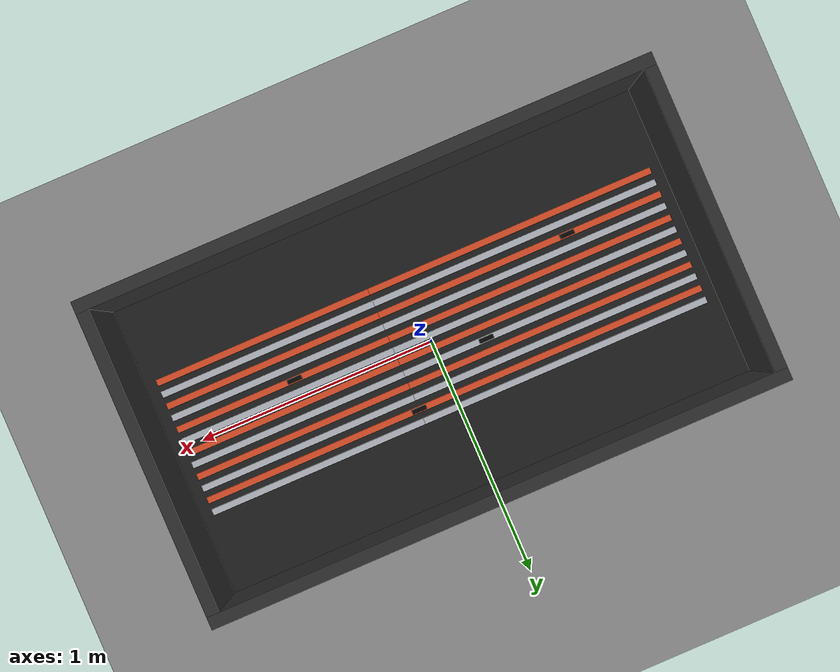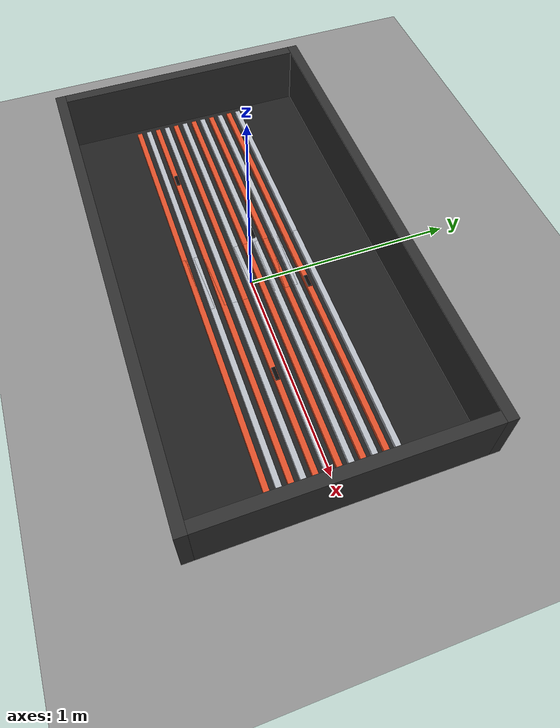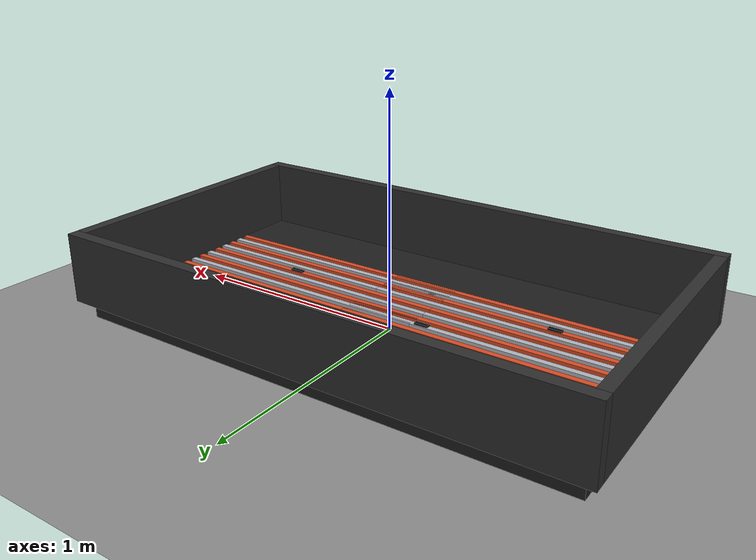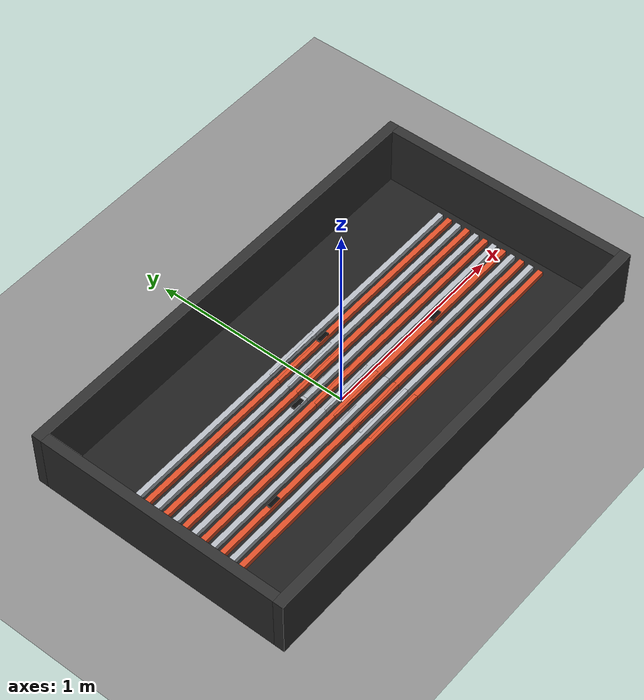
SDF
<?xml version="1.0"?>
<sdf version="1.9">
  <world name="electrode_test_world">

    <physics name="default_physics" type="ode">
      <max_step_size>0.001</max_step_size>
      <real_time_factor>1.0</real_time_factor>
    </physics>

    <plugin filename="gz-sim-physics-system" name="gz::sim::systems::Physics"/>
    <plugin filename="gz-sim-user-commands-system" name="gz::sim::systems::UserCommands"/>
    <plugin filename="gz-sim-scene-broadcaster-system" name="gz::sim::systems::SceneBroadcaster"/>
    <plugin filename="gz-sim-sensors-system" name="gz::sim::systems::Sensors">
      <render_engine>ogre2</render_engine>
    </plugin>
    <plugin filename="gz-sim-imu-system" name="gz::sim::systems::Imu"/>

    <gravity>0 0 -9.81</gravity>
    <magnetic_field>0 0 0</magnetic_field>

    <scene>
      <ambient>0.45 0.45 0.45 1</ambient>
      <background>0.92 0.92 0.92 1</background>
      <shadows>true</shadows>
    </scene>

    <light name="sun" type="directional">
      <cast_shadows>true</cast_shadows>
      <pose>0 0 8 0 0 0</pose>
      <diffuse>0.9 0.9 0.9 1</diffuse>
      <specular>0.2 0.2 0.2 1</specular>
      <direction>-0.4 0.2 -1</direction>
    </light>

    <model name="ground_plane">
      <static>true</static>
      <link name="link">
        <collision name="collision">
          <geometry>
            <plane>
              <normal>0 0 1</normal>
              <size>20 20</size>
            </plane>
          </geometry>
        </collision>
        <visual name="visual">
          <geometry>
            <plane>
              <normal>0 0 1</normal>
              <size>20 20</size>
            </plane>
          </geometry>
          <material>
            <ambient>0.55 0.55 0.55 1</ambient>
            <diffuse>0.55 0.55 0.55 1</diffuse>
          </material>
        </visual>
      </link>
    </model>

    <model name="cell_base">
      <static>true</static>
      <pose>0 0 0.0400 0 0 0</pose>
      <link name="link">
      <collision name="collision">
        <geometry>
          <box><size>2.2 1.2 0.08</size></box>
        </geometry>
      </collision>
        <visual name="visual">
          <geometry>
            <box><size>2.2 1.2 0.08</size></box>
          </geometry>
          <material>
            <ambient>0.12 0.12 0.12 1</ambient>
            <diffuse>0.12 0.12 0.12 1</diffuse>
          </material>
        </visual>
      </link>
    </model>

    <model name="border_front">
      <static>true</static>
      <pose>0.0000 -0.6250 0.2300 0 0 0</pose>
      <link name="link">
      <collision name="collision">
        <geometry>
          <box><size>2.3000 0.0500 0.3000</size></box>
        </geometry>
      </collision>
        <visual name="visual">
          <geometry>
            <box><size>2.3000 0.0500 0.3000</size></box>
          </geometry>
          <material>
            <ambient>0.18 0.18 0.18 1</ambient>
            <diffuse>0.18 0.18 0.18 1</diffuse>
          </material>
        </visual>
      </link>
    </model>

    <model name="border_back">
      <static>true</static>
      <pose>0.0000 0.6250 0.2300 0 0 0</pose>
      <link name="link">
      <collision name="collision">
        <geometry>
          <box><size>2.3000 0.0500 0.3000</size></box>
        </geometry>
      </collision>
        <visual name="visual">
          <geometry>
            <box><size>2.3000 0.0500 0.3000</size></box>
          </geometry>
          <material>
            <ambient>0.18 0.18 0.18 1</ambient>
            <diffuse>0.18 0.18 0.18 1</diffuse>
          </material>
        </visual>
      </link>
    </model>

    <model name="border_left">
      <static>true</static>
      <pose>-1.1250 0.0000 0.2300 0 0 0</pose>
      <link name="link">
      <collision name="collision">
        <geometry>
          <box><size>0.0500 1.2000 0.3000</size></box>
        </geometry>
      </collision>
        <visual name="visual">
          <geometry>
            <box><size>0.0500 1.2000 0.3000</size></box>
          </geometry>
          <material>
            <ambient>0.18 0.18 0.18 1</ambient>
            <diffuse>0.18 0.18 0.18 1</diffuse>
          </material>
        </visual>
      </link>
    </model>

    <model name="border_right">
      <static>true</static>
      <pose>1.1250 0.0000 0.2300 0 0 0</pose>
      <link name="link">
      <collision name="collision">
        <geometry>
          <box><size>0.0500 1.2000 0.3000</size></box>
        </geometry>
      </collision>
        <visual name="visual">
          <geometry>
            <box><size>0.0500 1.2000 0.3000</size></box>
          </geometry>
          <material>
            <ambient>0.18 0.18 0.18 1</ambient>
            <diffuse>0.18 0.18 0.18 1</diffuse>
          </material>
        </visual>
      </link>
    </model>

    <model name="row_1_anode_01">
      <static>true</static>
      <pose>-0.4500 -0.2750 0.0925 0 0 0</pose>
      <link name="link">
      <collision name="collision">
        <geometry>
          <box><size>1.2000 0.0250 0.0250</size></box>
        </geometry>
      </collision>
        <visual name="visual">
          <geometry>
            <box><size>1.2000 0.0250 0.0250</size></box>
          </geometry>
          <material>
            <ambient>0.85 0.30 0.15 1</ambient>
            <diffuse>0.85 0.30 0.15 1</diffuse>
          </material>
        </visual>
      </link>
    </model>

    <model name="row_1_cathode_02">
      <static>true</static>
      <pose>-0.4500 -0.2250 0.0925 0 0 0</pose>
      <link name="link">
      <collision name="collision">
        <geometry>
          <box><size>1.2000 0.0250 0.0250</size></box>
        </geometry>
      </collision>
        <visual name="visual">
          <geometry>
            <box><size>1.2000 0.0250 0.0250</size></box>
          </geometry>
          <material>
            <ambient>0.70 0.72 0.75 1</ambient>
            <diffuse>0.70 0.72 0.75 1</diffuse>
          </material>
        </visual>
      </link>
    </model>

    <model name="row_1_anode_03">
      <static>true</static>
      <pose>-0.4500 -0.1750 0.0925 0 0 0</pose>
      <link name="link">
      <collision name="collision">
        <geometry>
          <box><size>1.2000 0.0250 0.0250</size></box>
        </geometry>
      </collision>
        <visual name="visual">
          <geometry>
            <box><size>1.2000 0.0250 0.0250</size></box>
          </geometry>
          <material>
            <ambient>0.85 0.30 0.15 1</ambient>
            <diffuse>0.85 0.30 0.15 1</diffuse>
          </material>
        </visual>
      </link>
    </model>

    <model name="row_1_cathode_04">
      <static>true</static>
      <pose>-0.4500 -0.1250 0.0925 0 0 0</pose>
      <link name="link">
      <collision name="collision">
        <geometry>
          <box><size>1.2000 0.0250 0.0250</size></box>
        </geometry>
      </collision>
        <visual name="visual">
          <geometry>
            <box><size>1.2000 0.0250 0.0250</size></box>
          </geometry>
          <material>
            <ambient>0.70 0.72 0.75 1</ambient>
            <diffuse>0.70 0.72 0.75 1</diffuse>
          </material>
        </visual>
      </link>
    </model>

    <model name="row_1_anode_05">
      <static>true</static>
      <pose>-0.4500 -0.0750 0.0925 0 0 0</pose>
      <link name="link">
      <collision name="collision">
        <geometry>
          <box><size>1.2000 0.0250 0.0250</size></box>
        </geometry>
      </collision>
        <visual name="visual">
          <geometry>
            <box><size>1.2000 0.0250 0.0250</size></box>
          </geometry>
          <material>
            <ambient>0.85 0.30 0.15 1</ambient>
            <diffuse>0.85 0.30 0.15 1</diffuse>
          </material>
        </visual>
      </link>
    </model>

    <model name="row_1_cathode_06">
      <static>true</static>
      <pose>-0.4500 -0.0250 0.0925 0 0 0</pose>
      <link name="link">
      <collision name="collision">
        <geometry>
          <box><size>1.2000 0.0250 0.0250</size></box>
        </geometry>
      </collision>
        <visual name="visual">
          <geometry>
            <box><size>1.2000 0.0250 0.0250</size></box>
          </geometry>
          <material>
            <ambient>0.70 0.72 0.75 1</ambient>
            <diffuse>0.70 0.72 0.75 1</diffuse>
          </material>
        </visual>
      </link>
    </model>

    <model name="row_1_anode_07">
      <static>true</static>
      <pose>-0.4500 0.0250 0.0925 0 0 0</pose>
      <link name="link">
      <collision name="collision">
        <geometry>
          <box><size>1.2000 0.0250 0.0250</size></box>
        </geometry>
      </collision>
        <visual name="visual">
          <geometry>
            <box><size>1.2000 0.0250 0.0250</size></box>
          </geometry>
          <material>
            <ambient>0.85 0.30 0.15 1</ambient>
            <diffuse>0.85 0.30 0.15 1</diffuse>
          </material>
        </visual>
      </link>
    </model>

    <model name="row_1_cathode_08">
      <static>true</static>
      <pose>-0.4500 0.0750 0.0925 0 0 0</pose>
      <link name="link">
      <collision name="collision">
        <geometry>
          <box><size>1.2000 0.0250 0.0250</size></box>
        </geometry>
      </collision>
        <visual name="visual">
          <geometry>
            <box><size>1.2000 0.0250 0.0250</size></box>
          </geometry>
          <material>
            <ambient>0.70 0.72 0.75 1</ambient>
            <diffuse>0.70 0.72 0.75 1</diffuse>
          </material>
        </visual>
      </link>
    </model>

    <model name="row_1_anode_09">
      <static>true</static>
      <pose>-0.4500 0.1250 0.0925 0 0 0</pose>
      <link name="link">
      <collision name="collision">
        <geometry>
          <box><size>1.2000 0.0250 0.0250</size></box>
        </geometry>
      </collision>
        <visual name="visual">
          <geometry>
            <box><size>1.2000 0.0250 0.0250</size></box>
          </geometry>
          <material>
            <ambient>0.85 0.30 0.15 1</ambient>
            <diffuse>0.85 0.30 0.15 1</diffuse>
          </material>
        </visual>
      </link>
    </model>

    <model name="row_1_cathode_10">
      <static>true</static>
      <pose>-0.4500 0.1750 0.0925 0 0 0</pose>
      <link name="link">
      <collision name="collision">
        <geometry>
          <box><size>1.2000 0.0250 0.0250</size></box>
        </geometry>
      </collision>
        <visual name="visual">
          <geometry>
            <box><size>1.2000 0.0250 0.0250</size></box>
          </geometry>
          <material>
            <ambient>0.70 0.72 0.75 1</ambient>
            <diffuse>0.70 0.72 0.75 1</diffuse>
          </material>
        </visual>
      </link>
    </model>

    <model name="row_1_anode_11">
      <static>true</static>
      <pose>-0.4500 0.2250 0.0925 0 0 0</pose>
      <link name="link">
      <collision name="collision">
        <geometry>
          <box><size>1.2000 0.0250 0.0250</size></box>
        </geometry>
      </collision>
        <visual name="visual">
          <geometry>
            <box><size>1.2000 0.0250 0.0250</size></box>
          </geometry>
          <material>
            <ambient>0.85 0.30 0.15 1</ambient>
            <diffuse>0.85 0.30 0.15 1</diffuse>
          </material>
        </visual>
      </link>
    </model>

    <model name="row_1_cathode_12">
      <static>true</static>
      <pose>-0.4500 0.2750 0.0925 0 0 0</pose>
      <link name="link">
      <collision name="collision">
        <geometry>
          <box><size>1.2000 0.0250 0.0250</size></box>
        </geometry>
      </collision>
        <visual name="visual">
          <geometry>
            <box><size>1.2000 0.0250 0.0250</size></box>
          </geometry>
          <material>
            <ambient>0.70 0.72 0.75 1</ambient>
            <diffuse>0.70 0.72 0.75 1</diffuse>
          </material>
        </visual>
      </link>
    </model>

    <model name="row_2_anode_01">
      <static>true</static>
      <pose>0.4500 -0.2750 0.0925 0 0 0</pose>
      <link name="link">
      <collision name="collision">
        <geometry>
          <box><size>1.2000 0.0250 0.0250</size></box>
        </geometry>
      </collision>
        <visual name="visual">
          <geometry>
            <box><size>1.2000 0.0250 0.0250</size></box>
          </geometry>
          <material>
            <ambient>0.85 0.30 0.15 1</ambient>
            <diffuse>0.85 0.30 0.15 1</diffuse>
          </material>
        </visual>
      </link>
    </model>

    <model name="row_2_cathode_02">
      <static>true</static>
      <pose>0.4500 -0.2250 0.0925 0 0 0</pose>
      <link name="link">
      <collision name="collision">
        <geometry>
          <box><size>1.2000 0.0250 0.0250</size></box>
        </geometry>
      </collision>
        <visual name="visual">
          <geometry>
            <box><size>1.2000 0.0250 0.0250</size></box>
          </geometry>
          <material>
            <ambient>0.70 0.72 0.75 1</ambient>
            <diffuse>0.70 0.72 0.75 1</diffuse>
          </material>
        </visual>
      </link>
    </model>

    <model name="row_2_anode_03">
      <static>true</static>
      <pose>0.4500 -0.1750 0.0925 0 0 0</pose>
      <link name="link">
      <collision name="collision">
        <geometry>
          <box><size>1.2000 0.0250 0.0250</size></box>
        </geometry>
      </collision>
        <visual name="visual">
          <geometry>
            <box><size>1.2000 0.0250 0.0250</size></box>
          </geometry>
          <material>
            <ambient>0.85 0.30 0.15 1</ambient>
            <diffuse>0.85 0.30 0.15 1</diffuse>
          </material>
        </visual>
      </link>
    </model>

    <model name="row_2_cathode_04">
      <static>true</static>
      <pose>0.4500 -0.1250 0.0925 0 0 0</pose>
      <link name="link">
      <collision name="collision">
        <geometry>
          <box><size>1.2000 0.0250 0.0250</size></box>
        </geometry>
      </collision>
        <visual name="visual">
          <geometry>
            <box><size>1.2000 0.0250 0.0250</size></box>
          </geometry>
          <material>
            <ambient>0.70 0.72 0.75 1</ambient>
            <diffuse>0.70 0.72 0.75 1</diffuse>
          </material>
        </visual>
      </link>
    </model>

    <model name="row_2_anode_05">
      <static>true</static>
      <pose>0.4500 -0.0750 0.0925 0 0 0</pose>
      <link name="link">
      <collision name="collision">
        <geometry>
          <box><size>1.2000 0.0250 0.0250</size></box>
        </geometry>
      </collision>
        <visual name="visual">
          <geometry>
            <box><size>1.2000 0.0250 0.0250</size></box>
          </geometry>
          <material>
            <ambient>0.85 0.30 0.15 1</ambient>
            <diffuse>0.85 0.30 0.15 1</diffuse>
          </material>
        </visual>
      </link>
    </model>

    <model name="row_2_cathode_06">
      <static>true</static>
      <pose>0.4500 -0.0250 0.0925 0 0 0</pose>
      <link name="link">
      <collision name="collision">
        <geometry>
          <box><size>1.2000 0.0250 0.0250</size></box>
        </geometry>
      </collision>
        <visual name="visual">
          <geometry>
            <box><size>1.2000 0.0250 0.0250</size></box>
          </geometry>
          <material>
            <ambient>0.70 0.72 0.75 1</ambient>
            <diffuse>0.70 0.72 0.75 1</diffuse>
          </material>
        </visual>
      </link>
    </model>

    <model name="row_2_anode_07">
      <static>true</static>
      <pose>0.4500 0.0250 0.0925 0 0 0</pose>
      <link name="link">
      <collision name="collision">
        <geometry>
          <box><size>1.2000 0.0250 0.0250</size></box>
        </geometry>
      </collision>
        <visual name="visual">
          <geometry>
            <box><size>1.2000 0.0250 0.0250</size></box>
          </geometry>
          <material>
            <ambient>0.85 0.30 0.15 1</ambient>
            <diffuse>0.85 0.30 0.15 1</diffuse>
          </material>
        </visual>
      </link>
    </model>

    <model name="row_2_cathode_08">
      <static>true</static>
      <pose>0.4500 0.0750 0.0925 0 0 0</pose>
      <link name="link">
      <collision name="collision">
        <geometry>
          <box><size>1.2000 0.0250 0.0250</size></box>
        </geometry>
      </collision>
        <visual name="visual">
          <geometry>
            <box><size>1.2000 0.0250 0.0250</size></box>
          </geometry>
          <material>
            <ambient>0.70 0.72 0.75 1</ambient>
            <diffuse>0.70 0.72 0.75 1</diffuse>
          </material>
        </visual>
      </link>
    </model>

    <model name="row_2_anode_09">
      <static>true</static>
      <pose>0.4500 0.1250 0.0925 0 0 0</pose>
      <link name="link">
      <collision name="collision">
        <geometry>
          <box><size>1.2000 0.0250 0.0250</size></box>
        </geometry>
      </collision>
        <visual name="visual">
          <geometry>
            <box><size>1.2000 0.0250 0.0250</size></box>
          </geometry>
          <material>
            <ambient>0.85 0.30 0.15 1</ambient>
            <diffuse>0.85 0.30 0.15 1</diffuse>
          </material>
        </visual>
      </link>
    </model>

    <model name="row_2_cathode_10">
      <static>true</static>
      <pose>0.4500 0.1750 0.0925 0 0 0</pose>
      <link name="link">
      <collision name="collision">
        <geometry>
          <box><size>1.2000 0.0250 0.0250</size></box>
        </geometry>
      </collision>
        <visual name="visual">
          <geometry>
            <box><size>1.2000 0.0250 0.0250</size></box>
          </geometry>
          <material>
            <ambient>0.70 0.72 0.75 1</ambient>
            <diffuse>0.70 0.72 0.75 1</diffuse>
          </material>
        </visual>
      </link>
    </model>

    <model name="row_2_anode_11">
      <static>true</static>
      <pose>0.4500 0.2250 0.0925 0 0 0</pose>
      <link name="link">
      <collision name="collision">
        <geometry>
          <box><size>1.2000 0.0250 0.0250</size></box>
        </geometry>
      </collision>
        <visual name="visual">
          <geometry>
            <box><size>1.2000 0.0250 0.0250</size></box>
          </geometry>
          <material>
            <ambient>0.85 0.30 0.15 1</ambient>
            <diffuse>0.85 0.30 0.15 1</diffuse>
          </material>
        </visual>
      </link>
    </model>

    <model name="row_2_cathode_12">
      <static>true</static>
      <pose>0.4500 0.2750 0.0925 0 0 0</pose>
      <link name="link">
      <collision name="collision">
        <geometry>
          <box><size>1.2000 0.0250 0.0250</size></box>
        </geometry>
      </collision>
        <visual name="visual">
          <geometry>
            <box><size>1.2000 0.0250 0.0250</size></box>
          </geometry>
          <material>
            <ambient>0.70 0.72 0.75 1</ambient>
            <diffuse>0.70 0.72 0.75 1</diffuse>
          </material>
        </visual>
      </link>
    </model>

    <model name="magnet_01">
      <static>true</static>
      <pose>-0.6500 -0.1750 0.1090 0 0 0</pose>
      <link name="link">
      <collision name="collision">
        <geometry>
          <box><size>0.0600 0.0180 0.0080</size></box>
        </geometry>
      </collision>
        <visual name="visual">
          <geometry>
            <box><size>0.0600 0.0180 0.0080</size></box>
          </geometry>
          <material>
            <ambient>0.03 0.03 0.03 1</ambient>
            <diffuse>0.03 0.03 0.03 1</diffuse>
          </material>
        </visual>
      </link>
    </model>

    <model name="magnet_02">
      <static>true</static>
      <pose>-0.2000 0.0750 0.1090 0 0 0</pose>
      <link name="link">
      <collision name="collision">
        <geometry>
          <box><size>0.0600 0.0180 0.0080</size></box>
        </geometry>
      </collision>
        <visual name="visual">
          <geometry>
            <box><size>0.0600 0.0180 0.0080</size></box>
          </geometry>
          <material>
            <ambient>0.03 0.03 0.03 1</ambient>
            <diffuse>0.03 0.03 0.03 1</diffuse>
          </material>
        </visual>
      </link>
    </model>

    <model name="magnet_03">
      <static>true</static>
      <pose>0.5500 -0.0750 0.1090 0 0 0</pose>
      <link name="link">
      <collision name="collision">
        <geometry>
          <box><size>0.0600 0.0180 0.0080</size></box>
        </geometry>
      </collision>
        <visual name="visual">
          <geometry>
            <box><size>0.0600 0.0180 0.0080</size></box>
          </geometry>
          <material>
            <ambient>0.03 0.03 0.03 1</ambient>
            <diffuse>0.03 0.03 0.03 1</diffuse>
          </material>
        </visual>
      </link>
    </model>

    <model name="magnet_04">
      <static>true</static>
      <pose>0.1500 0.2250 0.1090 0 0 0</pose>
      <link name="link">
      <collision name="collision">
        <geometry>
          <box><size>0.0600 0.0180 0.0080</size></box>
        </geometry>
      </collision>
        <visual name="visual">
          <geometry>
            <box><size>0.0600 0.0180 0.0080</size></box>
          </geometry>
          <material>
            <ambient>0.03 0.03 0.03 1</ambient>
            <diffuse>0.03 0.03 0.03 1</diffuse>
          </material>
        </visual>
      </link>
    </model>

    <gui fullscreen="false">
      <camera name="overview_camera">
        <pose>2.8 -3.4 2.7 0 0.55 2.25</pose>
      </camera>
    </gui>

  </world>
</sdf>
